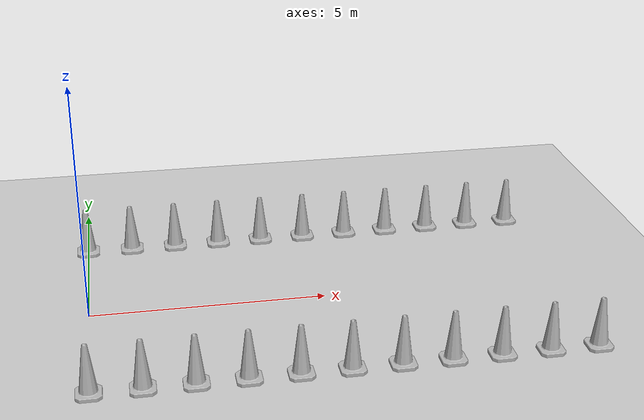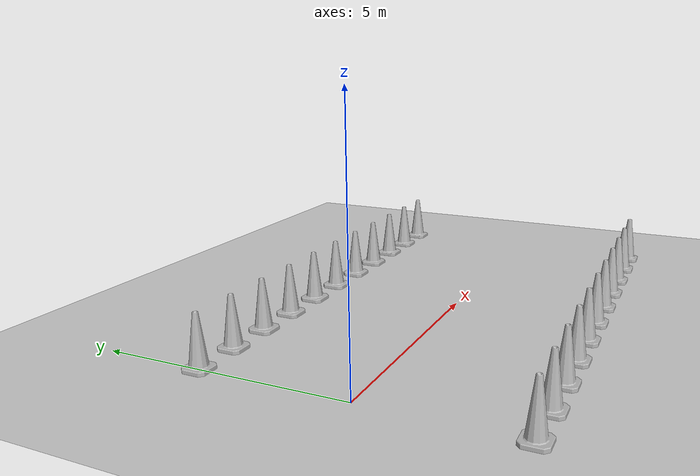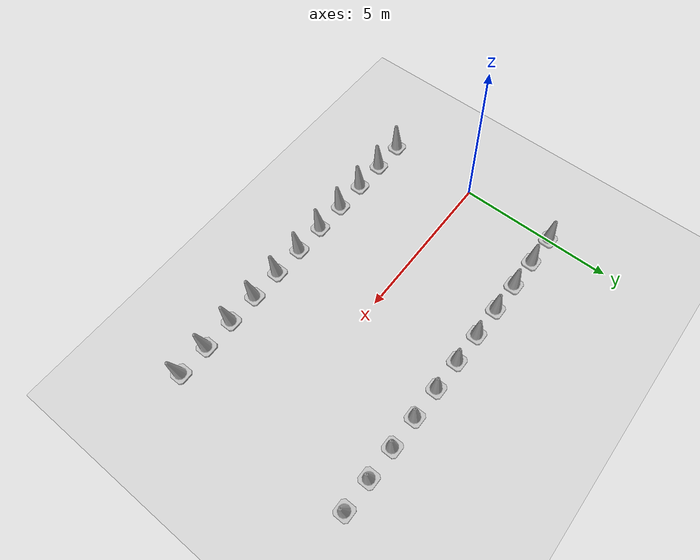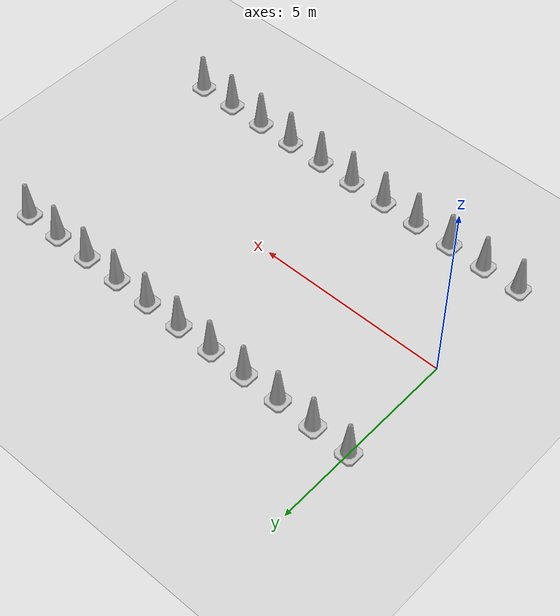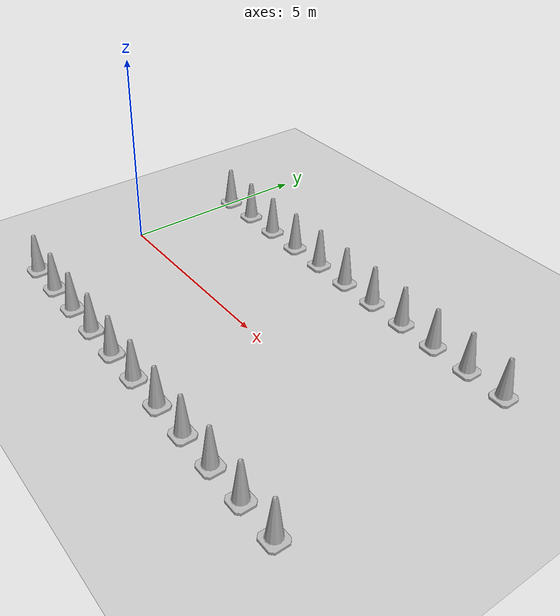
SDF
<sdf version="1.7">
 <world name="default">
  <light name="sun" type="directional">
   <pose>0 0 10 0 -0 0</pose>
   <diffuse>0.8 0.8 0.8 1</diffuse>
   <specular>0.2 0.2 0.2 1</specular>
   <attenuation>
    <range>1000</range>
    <constant>0.9</constant>
    <linear>0.01</linear>
    <quadratic>0.001</quadratic>
   </attenuation>
   <direction>-0.5 0.1 -0.9</direction>
   <spot><inner_angle>0</inner_angle><outer_angle>0</outer_angle><falloff>0</falloff></spot>
  </light>
  <model name="ground_plane">
   <static>1</static>
   <link name="link">
    <collision name="collision">
     <geometry><plane><normal>0 0 1</normal><size>100 100</size></plane></geometry>
     <surface>
      <contact><collide_bitmask>65535</collide_bitmask></contact>
      <friction><ode><mu>100</mu><mu2>50</mu2></ode></friction>
     </surface>
    </collision>
    <visual name="visual">
     <cast_shadows>0</cast_shadows>
     <geometry><plane><normal>0 0 1</normal><size>100 100</size></plane></geometry>
     <material>
      <script><uri>file://media/materials/scripts/gazebo.material</uri><name>Gazebo/Grey</name></script>
     </material>
    </visual>
   </link>
  </model>
  <gravity>0 0 -9.8</gravity>
  <magnetic_field>6e-06 2.3e-05 -4.2e-05</magnetic_field>
  <atmosphere type="adiabatic"/>
  <physics type="ode">
   <max_step_size>0.001</max_step_size>
   <real_time_factor>1</real_time_factor>
   <real_time_update_rate>1000</real_time_update_rate>
  </physics>
  <scene><ambient>0.4 0.4 0.4 1</ambient><background>0.7 0.7 0.7 1</background><shadows>1</shadows></scene>
  <audio><device>default</device></audio>
  <spherical_coordinates>
   <surface_model>EARTH_WGS84</surface_model>
   <world_frame_orientation>ENU</world_frame_orientation>
   <longitude_deg>21.893977363705066</longitude_deg>
   <latitude_deg>43.330890405343304</latitude_deg>
   <elevation>236</elevation>
   <heading_deg>180</heading_deg>
  </spherical_coordinates>
  <model name="Construction Cone 01">
   <link name="cone_link_01">
    <collision name="collision">
     <geometry>
      <mesh><scale>10 10 10</scale><uri>model://construction_cone/meshes/construction_cone.dae</uri></mesh>
     </geometry>
    </collision>
    <visual name="visual">
     <geometry>
      <mesh><scale>10 10 10</scale><uri>model://construction_cone/meshes/construction_cone.dae</uri></mesh>
     </geometry>
    </visual>
    <inertial>
     <inertia><ixx>1</ixx><ixy>0</ixy><ixz>0</ixz><iyy>1</iyy><iyz>0</iyz><izz>1</izz></inertia>
     <mass>1</mass>
    </inertial>
   </link>
   <pose>0 3 0 0 -0 0</pose>
  </model>
  <model name="Construction Cone 02">
   <link name="cone_link_02">
    <collision name="collision">
     <geometry>
      <mesh><scale>10 10 10</scale><uri>model://construction_cone/meshes/construction_cone.dae</uri></mesh>
     </geometry>
    </collision>
    <visual name="visual">
     <geometry>
      <mesh><scale>10 10 10</scale><uri>model://construction_cone/meshes/construction_cone.dae</uri></mesh>
     </geometry>
    </visual>
    <inertial>
     <inertia><ixx>1</ixx><ixy>0</ixy><ixz>0</ixz><iyy>1</iyy><iyz>0</iyz><izz>1</izz></inertia>
     <mass>1</mass>
    </inertial>
   </link>
   <pose>1 3 0 0 -0 0</pose>
  </model>
  <model name="Construction Cone 03">
   <link name="cone_link_03">
    <collision name="collision">
     <geometry>
      <mesh><scale>10 10 10</scale><uri>model://construction_cone/meshes/construction_cone.dae</uri></mesh>
     </geometry>
    </collision>
    <visual name="visual">
     <geometry>
      <mesh><scale>10 10 10</scale><uri>model://construction_cone/meshes/construction_cone.dae</uri></mesh>
     </geometry>
    </visual>
    <inertial>
     <inertia><ixx>1</ixx><ixy>0</ixy><ixz>0</ixz><iyy>1</iyy><iyz>0</iyz><izz>1</izz></inertia>
     <mass>1</mass>
    </inertial>
   </link>
   <pose>2 3 0 0 -0 0</pose>
  </model>
  <model name="Construction Cone 04">
   <link name="cone_link_04">
    <collision name="collision">
     <geometry>
      <mesh><scale>10 10 10</scale><uri>model://construction_cone/meshes/construction_cone.dae</uri></mesh>
     </geometry>
    </collision>
    <visual name="visual">
     <geometry>
      <mesh><scale>10 10 10</scale><uri>model://construction_cone/meshes/construction_cone.dae</uri></mesh>
     </geometry>
    </visual>
    <inertial>
     <inertia><ixx>1</ixx><ixy>0</ixy><ixz>0</ixz><iyy>1</iyy><iyz>0</iyz><izz>1</izz></inertia>
     <mass>1</mass>
    </inertial>
   </link>
   <pose>3 3 0 0 -0 0</pose>
  </model>
  <model name="Construction Cone 05">
   <link name="cone_link_05">
    <collision name="collision">
     <geometry>
      <mesh><scale>10 10 10</scale><uri>model://construction_cone/meshes/construction_cone.dae</uri></mesh>
     </geometry>
    </collision>
    <visual name="visual">
     <geometry>
      <mesh><scale>10 10 10</scale><uri>model://construction_cone/meshes/construction_cone.dae</uri></mesh>
     </geometry>
    </visual>
    <inertial>
     <inertia><ixx>1</ixx><ixy>0</ixy><ixz>0</ixz><iyy>1</iyy><iyz>0</iyz><izz>1</izz></inertia>
     <mass>1</mass>
    </inertial>
   </link>
   <pose>4 3 0 0 -0 0</pose>
  </model>
  <model name="Construction Cone 06">
   <link name="cone_link_06">
    <collision name="collision">
     <geometry>
      <mesh><scale>10 10 10</scale><uri>model://construction_cone/meshes/construction_cone.dae</uri></mesh>
     </geometry>
    </collision>
    <visual name="visual">
     <geometry>
      <mesh><scale>10 10 10</scale><uri>model://construction_cone/meshes/construction_cone.dae</uri></mesh>
     </geometry>
    </visual>
    <inertial>
     <inertia><ixx>1</ixx><ixy>0</ixy><ixz>0</ixz><iyy>1</iyy><iyz>0</iyz><izz>1</izz></inertia>
     <mass>1</mass>
    </inertial>
   </link>
   <pose>5 3 0 0 -0 0</pose>
  </model>
  <model name="Construction Cone 07">
   <link name="cone_link_07">
    <collision name="collision">
     <geometry>
      <mesh><scale>10 10 10</scale><uri>model://construction_cone/meshes/construction_cone.dae</uri></mesh>
     </geometry>
    </collision>
    <visual name="visual">
     <geometry>
      <mesh><scale>10 10 10</scale><uri>model://construction_cone/meshes/construction_cone.dae</uri></mesh>
     </geometry>
    </visual>
    <inertial>
     <inertia><ixx>1</ixx><ixy>0</ixy><ixz>0</ixz><iyy>1</iyy><iyz>0</iyz><izz>1</izz></inertia>
     <mass>1</mass>
    </inertial>
   </link>
   <pose>6 3 0 0 -0 0</pose>
  </model>
  <model name="Construction Cone 08">
   <link name="cone_link_08">
    <collision name="collision">
     <geometry>
      <mesh><scale>10 10 10</scale><uri>model://construction_cone/meshes/construction_cone.dae</uri></mesh>
     </geometry>
    </collision>
    <visual name="visual">
     <geometry>
      <mesh><scale>10 10 10</scale><uri>model://construction_cone/meshes/construction_cone.dae</uri></mesh>
     </geometry>
    </visual>
    <inertial>
     <inertia><ixx>1</ixx><ixy>0</ixy><ixz>0</ixz><iyy>1</iyy><iyz>0</iyz><izz>1</izz></inertia>
     <mass>1</mass>
    </inertial>
   </link>
   <pose>7 3 0 0 -0 0</pose>
  </model>
  <model name="Construction Cone 09">
   <link name="cone_link_09">
    <collision name="collision">
     <geometry>
      <mesh><scale>10 10 10</scale><uri>model://construction_cone/meshes/construction_cone.dae</uri></mesh>
     </geometry>
    </collision>
    <visual name="visual">
     <geometry>
      <mesh><scale>10 10 10</scale><uri>model://construction_cone/meshes/construction_cone.dae</uri></mesh>
     </geometry>
    </visual>
    <inertial>
     <inertia><ixx>1</ixx><ixy>0</ixy><ixz>0</ixz><iyy>1</iyy><iyz>0</iyz><izz>1</izz></inertia>
     <mass>1</mass>
    </inertial>
   </link>
   <pose>8 3 0 0 -0 0</pose>
  </model>
  <model name="Construction Cone 10">
   <link name="cone_link_10">
    <collision name="collision">
     <geometry>
      <mesh><scale>10 10 10</scale><uri>model://construction_cone/meshes/construction_cone.dae</uri></mesh>
     </geometry>
    </collision>
    <visual name="visual">
     <geometry>
      <mesh><scale>10 10 10</scale><uri>model://construction_cone/meshes/construction_cone.dae</uri></mesh>
     </geometry>
    </visual>
    <inertial>
     <inertia><ixx>1</ixx><ixy>0</ixy><ixz>0</ixz><iyy>1</iyy><iyz>0</iyz><izz>1</izz></inertia>
     <mass>1</mass>
    </inertial>
   </link>
   <pose>9 3 0 0 -0 0</pose>
  </model>
  <model name="Construction Cone 11">
   <link name="cone_link_11">
    <collision name="collision">
     <geometry>
      <mesh><scale>10 10 10</scale><uri>model://construction_cone/meshes/construction_cone.dae</uri></mesh>
     </geometry>
    </collision>
    <visual name="visual">
     <geometry>
      <mesh><scale>10 10 10</scale><uri>model://construction_cone/meshes/construction_cone.dae</uri></mesh>
     </geometry>
    </visual>
    <inertial>
     <inertia><ixx>1</ixx><ixy>0</ixy><ixz>0</ixz><iyy>1</iyy><iyz>0</iyz><izz>1</izz></inertia>
     <mass>1</mass>
    </inertial>
   </link>
   <pose>10 3 0 0 -0 0</pose>
  </model>
  <model name="Construction Cone 12">
   <link name="cone_link_12">
    <collision name="collision">
     <geometry>
      <mesh><scale>10 10 10</scale><uri>model://construction_cone/meshes/construction_cone.dae</uri></mesh>
     </geometry>
    </collision>
    <visual name="visual">
     <geometry>
      <mesh><scale>10 10 10</scale><uri>model://construction_cone/meshes/construction_cone.dae</uri></mesh>
     </geometry>
    </visual>
    <inertial>
     <inertia><ixx>1</ixx><ixy>0</ixy><ixz>0</ixz><iyy>1</iyy><iyz>0</iyz><izz>1</izz></inertia>
     <mass>1</mass>
    </inertial>
   </link>
   <pose>0 -3 0 0 -0 0</pose>
  </model>
  <model name="Construction Cone 13">
   <link name="cone_link_13">
    <collision name="collision">
     <geometry>
      <mesh><scale>10 10 10</scale><uri>model://construction_cone/meshes/construction_cone.dae</uri></mesh>
     </geometry>
    </collision>
    <visual name="visual">
     <geometry>
      <mesh><scale>10 10 10</scale><uri>model://construction_cone/meshes/construction_cone.dae</uri></mesh>
     </geometry>
    </visual>
    <inertial>
     <inertia><ixx>1</ixx><ixy>0</ixy><ixz>0</ixz><iyy>1</iyy><iyz>0</iyz><izz>1</izz></inertia>
     <mass>1</mass>
    </inertial>
   </link>
   <pose>1 -3 0 0 -0 0</pose>
  </model>
  <model name="Construction Cone 14">
   <link name="cone_link_14">
    <collision name="collision">
     <geometry>
      <mesh><scale>10 10 10</scale><uri>model://construction_cone/meshes/construction_cone.dae</uri></mesh>
     </geometry>
    </collision>
    <visual name="visual">
     <geometry>
      <mesh><scale>10 10 10</scale><uri>model://construction_cone/meshes/construction_cone.dae</uri></mesh>
     </geometry>
    </visual>
    <inertial>
     <inertia><ixx>1</ixx><ixy>0</ixy><ixz>0</ixz><iyy>1</iyy><iyz>0</iyz><izz>1</izz></inertia>
     <mass>1</mass>
    </inertial>
   </link>
   <pose>2 -3 0 0 -0 0</pose>
  </model>
  <model name="Construction Cone 15">
   <link name="cone_link_15">
    <collision name="collision">
     <geometry>
      <mesh><scale>10 10 10</scale><uri>model://construction_cone/meshes/construction_cone.dae</uri></mesh>
     </geometry>
    </collision>
    <visual name="visual">
     <geometry>
      <mesh><scale>10 10 10</scale><uri>model://construction_cone/meshes/construction_cone.dae</uri></mesh>
     </geometry>
    </visual>
    <inertial>
     <inertia><ixx>1</ixx><ixy>0</ixy><ixz>0</ixz><iyy>1</iyy><iyz>0</iyz><izz>1</izz></inertia>
     <mass>1</mass>
    </inertial>
   </link>
   <pose>3 -3 0 0 -0 0</pose>
  </model>
  <model name="Construction Cone 16">
   <link name="cone_link_16">
    <collision name="collision">
     <geometry>
      <mesh><scale>10 10 10</scale><uri>model://construction_cone/meshes/construction_cone.dae</uri></mesh>
     </geometry>
    </collision>
    <visual name="visual">
     <geometry>
      <mesh><scale>10 10 10</scale><uri>model://construction_cone/meshes/construction_cone.dae</uri></mesh>
     </geometry>
    </visual>
    <inertial>
     <inertia><ixx>1</ixx><ixy>0</ixy><ixz>0</ixz><iyy>1</iyy><iyz>0</iyz><izz>1</izz></inertia>
     <mass>1</mass>
    </inertial>
   </link>
   <pose>4 -3 0 0 -0 0</pose>
  </model>
  <model name="Construction Cone 17">
   <link name="cone_link_17">
    <collision name="collision">
     <geometry>
      <mesh><scale>10 10 10</scale><uri>model://construction_cone/meshes/construction_cone.dae</uri></mesh>
     </geometry>
    </collision>
    <visual name="visual">
     <geometry>
      <mesh><scale>10 10 10</scale><uri>model://construction_cone/meshes/construction_cone.dae</uri></mesh>
     </geometry>
    </visual>
    <inertial>
     <inertia><ixx>1</ixx><ixy>0</ixy><ixz>0</ixz><iyy>1</iyy><iyz>0</iyz><izz>1</izz></inertia>
     <mass>1</mass>
    </inertial>
   </link>
   <pose>5 -3 0 0 -0 0</pose>
  </model>
  <model name="Construction Cone 18">
   <link name="cone_link_18">
    <collision name="collision">
     <geometry>
      <mesh><scale>10 10 10</scale><uri>model://construction_cone/meshes/construction_cone.dae</uri></mesh>
     </geometry>
    </collision>
    <visual name="visual">
     <geometry>
      <mesh><scale>10 10 10</scale><uri>model://construction_cone/meshes/construction_cone.dae</uri></mesh>
     </geometry>
    </visual>
    <inertial>
     <inertia><ixx>1</ixx><ixy>0</ixy><ixz>0</ixz><iyy>1</iyy><iyz>0</iyz><izz>1</izz></inertia>
     <mass>1</mass>
    </inertial>
   </link>
   <pose>6 -3 0 0 -0 0</pose>
  </model>
  <model name="Construction Cone 19">
   <link name="cone_link_19">
    <collision name="collision">
     <geometry>
      <mesh><scale>10 10 10</scale><uri>model://construction_cone/meshes/construction_cone.dae</uri></mesh>
     </geometry>
    </collision>
    <visual name="visual">
     <geometry>
      <mesh><scale>10 10 10</scale><uri>model://construction_cone/meshes/construction_cone.dae</uri></mesh>
     </geometry>
    </visual>
    <inertial>
     <inertia><ixx>1</ixx><ixy>0</ixy><ixz>0</ixz><iyy>1</iyy><iyz>0</iyz><izz>1</izz></inertia>
     <mass>1</mass>
    </inertial>
   </link>
   <pose>7 -3 0 0 -0 0</pose>
  </model>
  <model name="Construction Cone 20">
   <link name="cone_link_20">
    <collision name="collision">
     <geometry>
      <mesh><scale>10 10 10</scale><uri>model://construction_cone/meshes/construction_cone.dae</uri></mesh>
     </geometry>
    </collision>
    <visual name="visual">
     <geometry>
      <mesh><scale>10 10 10</scale><uri>model://construction_cone/meshes/construction_cone.dae</uri></mesh>
     </geometry>
    </visual>
    <inertial>
     <inertia><ixx>1</ixx><ixy>0</ixy><ixz>0</ixz><iyy>1</iyy><iyz>0</iyz><izz>1</izz></inertia>
     <mass>1</mass>
    </inertial>
   </link>
   <pose>8 -3 0 0 -0 0</pose>
  </model>
  <model name="Construction Cone 21">
   <link name="cone_link_21">
    <collision name="collision">
     <geometry>
      <mesh><scale>10 10 10</scale><uri>model://construction_cone/meshes/construction_cone.dae</uri></mesh>
     </geometry>
    </collision>
    <visual name="visual">
     <geometry>
      <mesh><scale>10 10 10</scale><uri>model://construction_cone/meshes/construction_cone.dae</uri></mesh>
     </geometry>
    </visual>
    <inertial>
     <inertia><ixx>1</ixx><ixy>0</ixy><ixz>0</ixz><iyy>1</iyy><iyz>0</iyz><izz>1</izz></inertia>
     <mass>1</mass>
    </inertial>
   </link>
   <pose>9 -3 0 0 -0 0</pose>
  </model>
  <model name="Construction Cone 22">
   <link name="cone_link_22">
    <collision name="collision">
     <geometry>
      <mesh><scale>10 10 10</scale><uri>model://construction_cone/meshes/construction_cone.dae</uri></mesh>
     </geometry>
    </collision>
    <visual name="visual">
     <geometry>
      <mesh><scale>10 10 10</scale><uri>model://construction_cone/meshes/construction_cone.dae</uri></mesh>
     </geometry>
    </visual>
    <inertial>
     <inertia><ixx>1</ixx><ixy>0</ixy><ixz>0</ixz><iyy>1</iyy><iyz>0</iyz><izz>1</izz></inertia>
     <mass>1</mass>
    </inertial>
   </link>
   <pose>10 -3 0 0 -0 0</pose>
  </model>
 </world>
</sdf>
